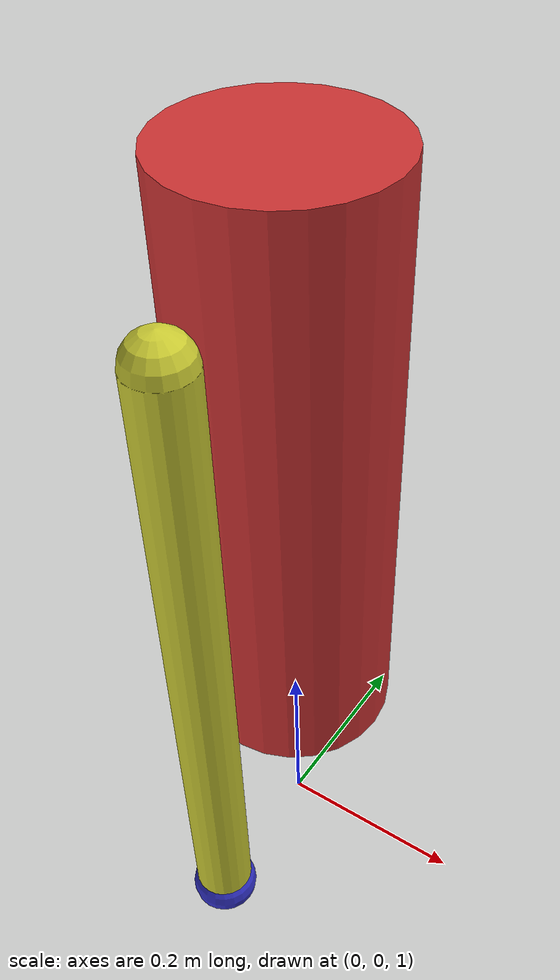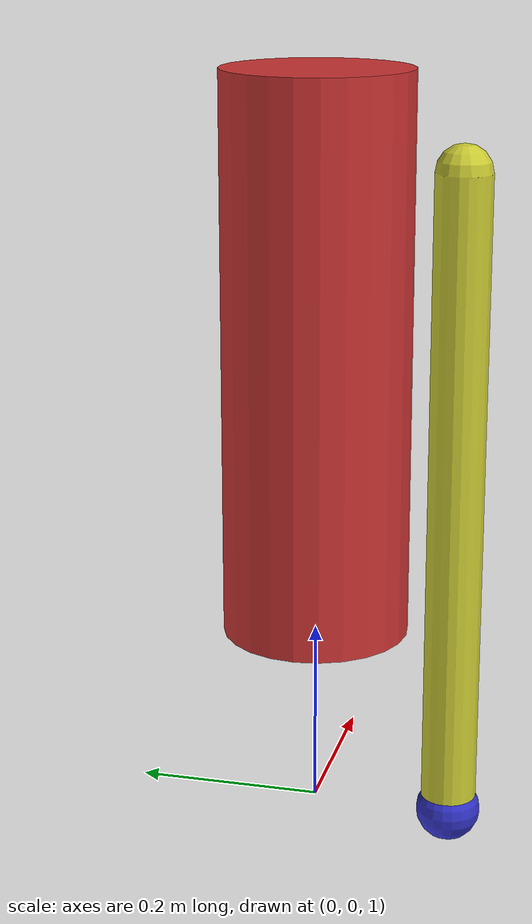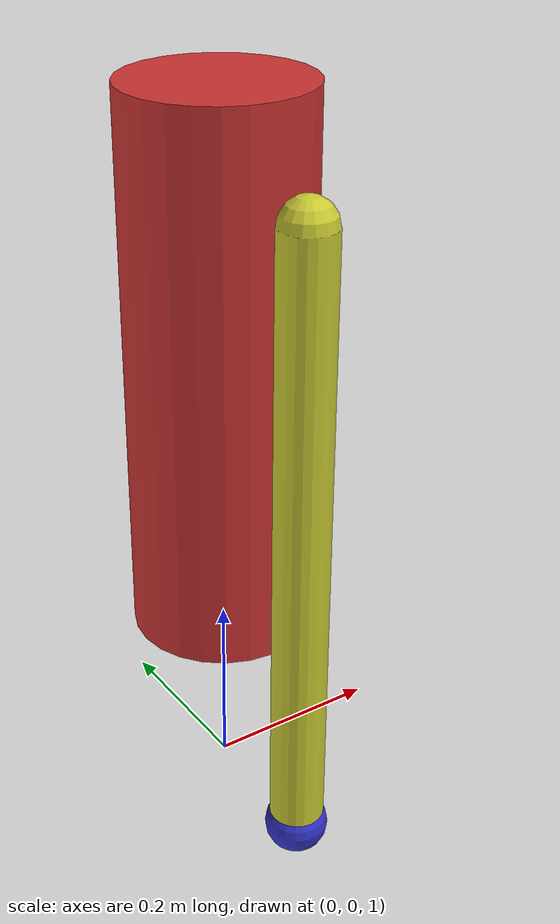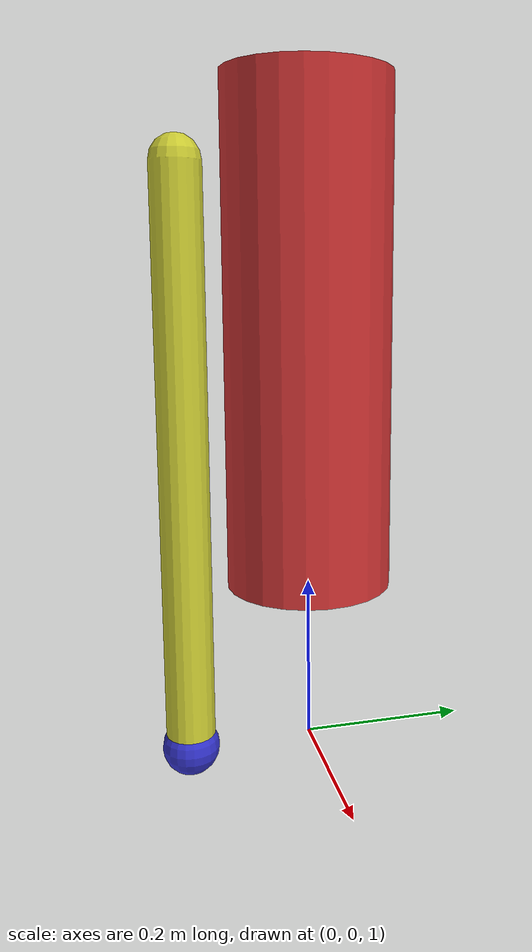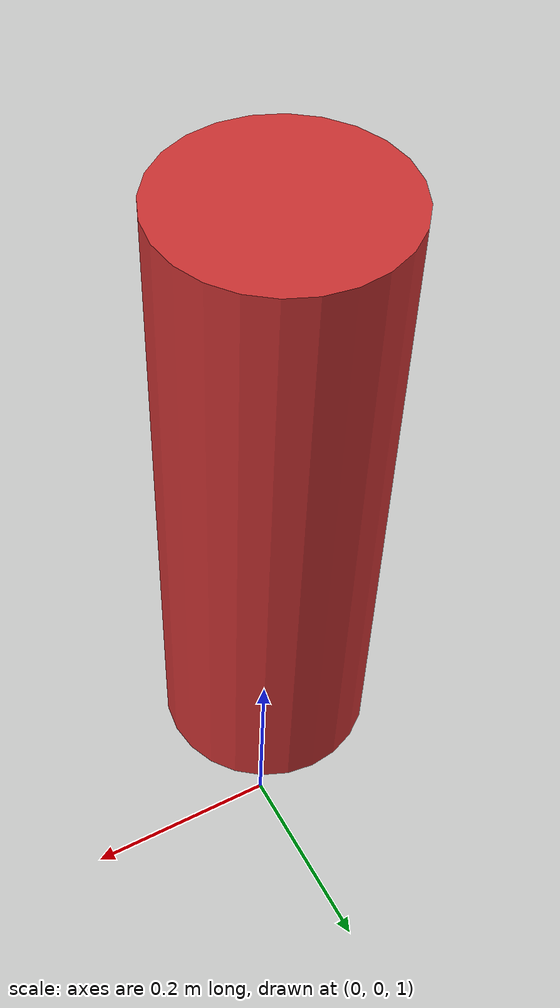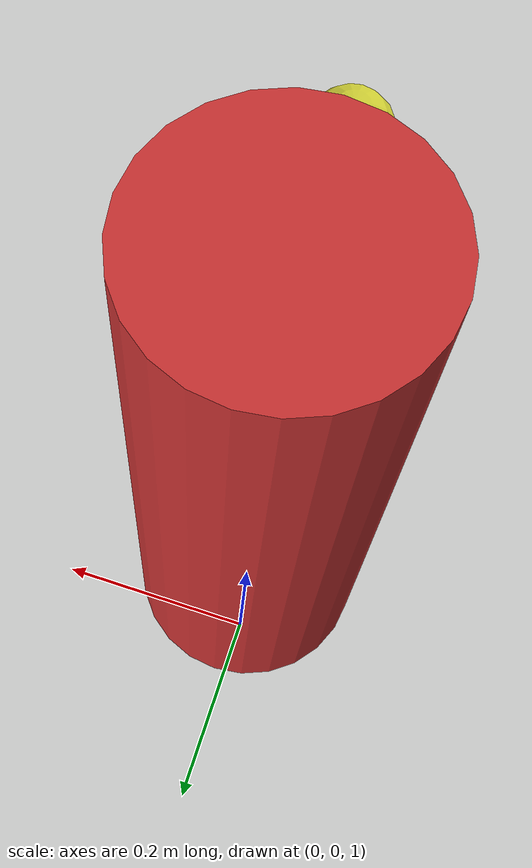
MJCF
<mujoco>
  <worldbody>
    <!-- Hovering Torso -->
    <body name="torso" pos="0 0 1.5">
      <geom type="cylinder" size="0.1 0.3" rgba="0.8 0.2 0.2 1" mass="10"/>

      <!-- Pendulum Link 1: The Arm -->
      <body name="arm" pos="0 -0.15 0.2">
        <!-- Joint 1: The Shoulder -->
        <joint name="shoulder" type="hinge" axis="0 0.866 0.5"/>
        <geom type="capsule" size="0.03" fromto="0 0 0 0 0 -0.7" rgba="0.8 0.8 0.2 1" mass="2"/>

        <!-- The Wrist (Anchor for Pendulum Link 2) -->
        <body name="wrist_mount" pos="0 0 -0.7">
          <!-- Joint 2: The Wrist (Parallel to the shoulder) -->
          <joint name="wrist" type="hinge" axis="0 0.866 0.5"/>
          <!-- Visual marker for the wrist joint -->
          <geom type="sphere" size="0.035" rgba="0.2 0.2 0.8 1" mass="0.1"/>
        </body>
      </body>
    </body>
  </worldbody>

  <actuator>
    <position joint="shoulder" name="ctrl_shoulder" kp="800"/>
    <position joint="wrist" name="ctrl_wrist" kp="300"/>
  </actuator>
</mujoco>
